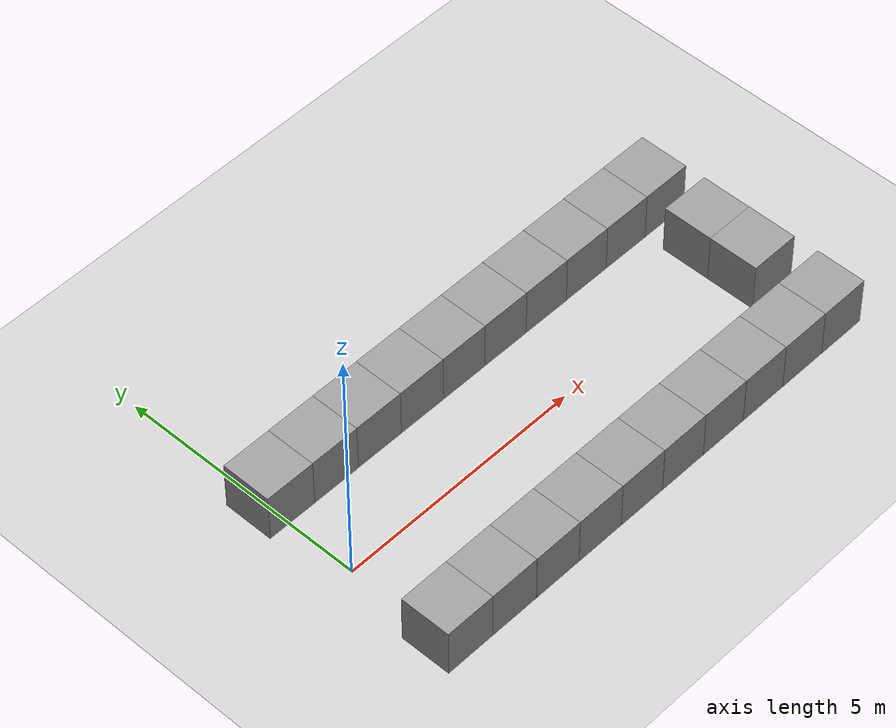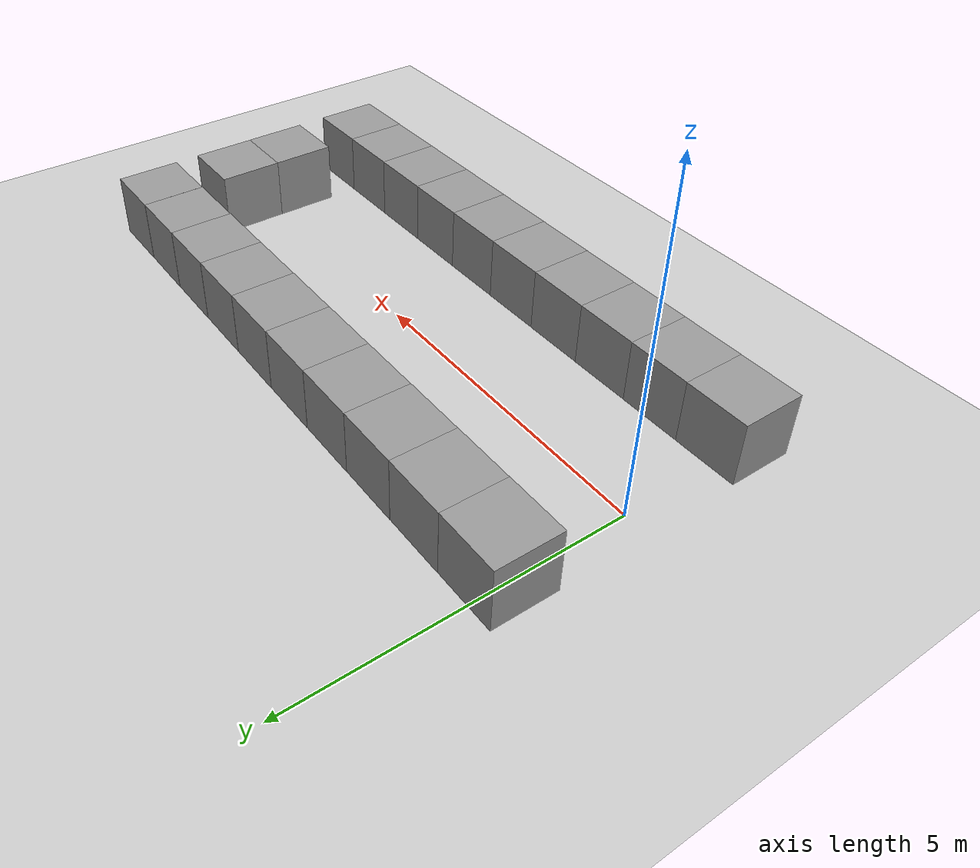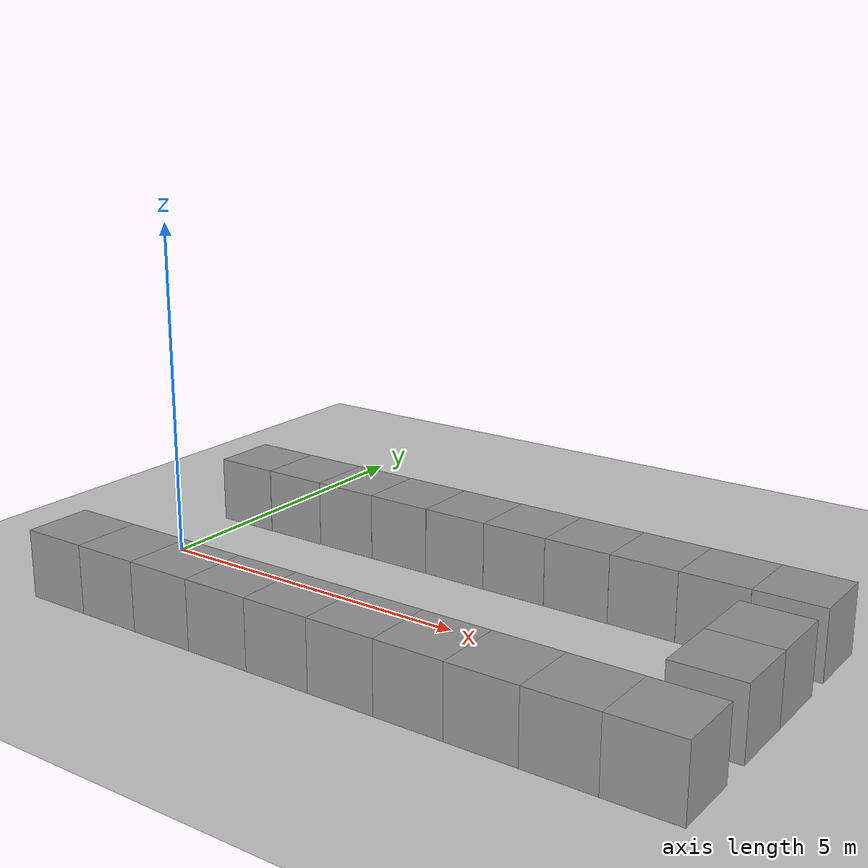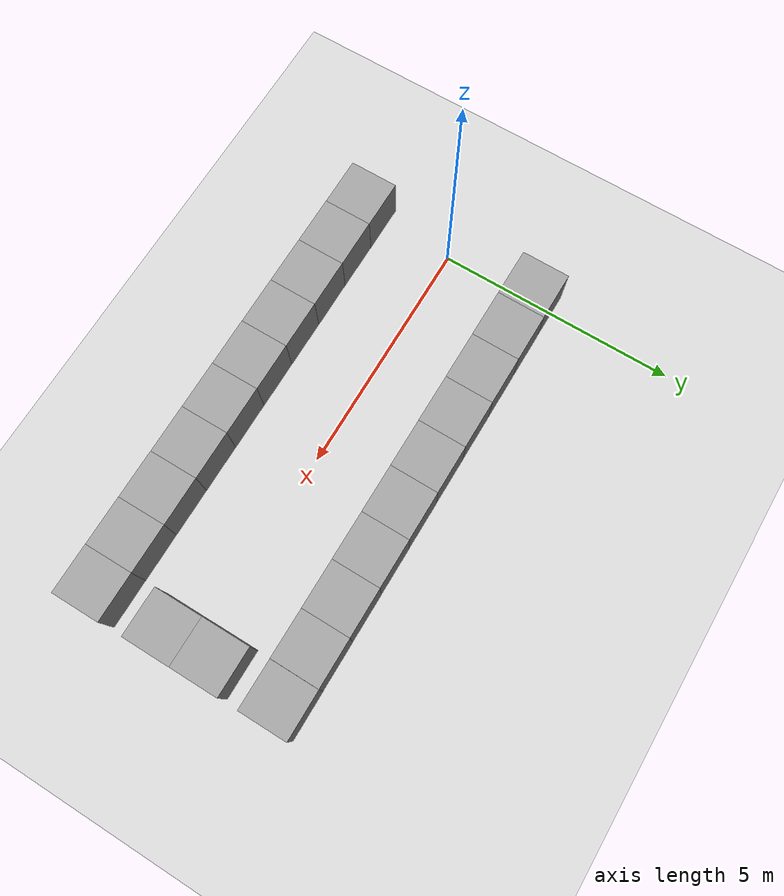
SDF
<sdf version="1.7">
 <world name="default">
  <scene><ambient>0.4 0.4 0.4 1</ambient><background>0.7 0.7 0.7 1</background><shadows>1</shadows></scene>
  <light name="sun" type="directional">
   <pose>0 0 10 0 -0 0</pose>
   <diffuse>0.8 0.8 0.8 1</diffuse>
   <specular>0.2 0.2 0.2 1</specular>
   <attenuation>
    <range>1000</range>
    <constant>0.9</constant>
    <linear>0.01</linear>
    <quadratic>0.001</quadratic>
   </attenuation>
   <direction>-0.5 0.1 -0.9</direction>
   <spot><inner_angle>0</inner_angle><outer_angle>0</outer_angle><falloff>0</falloff></spot>
  </light>
  <model name="ground_plane">
   <static>1</static>
   <link name="link">
    <collision name="collision">
     <geometry><plane><normal>0 0 1</normal><size>100 100</size></plane></geometry>
     <surface>
      <contact><collide_bitmask>65535</collide_bitmask></contact>
      <friction><ode><mu>100</mu><mu2>50</mu2></ode></friction>
     </surface>
    </collision>
    <visual name="visual">
     <cast_shadows>0</cast_shadows>
     <geometry><plane><normal>0 0 1</normal><size>100 100</size></plane></geometry>
     <material>
      <script><uri>file://media/materials/scripts/gazebo.material</uri><name>Gazebo/Grey</name></script>
     </material>
    </visual>
   </link>
  </model>
  <physics type="ode">
   <real_time_update_rate>1000</real_time_update_rate>
   <max_step_size>0.001</max_step_size>
   <real_time_factor>1</real_time_factor>
   <ode>
    <solver>
     <type>quick</type>
     <iters>150</iters>
     <precon_iters>0</precon_iters>
     <sor>1.4</sor>
     <use_dynamic_moi_rescaling>1</use_dynamic_moi_rescaling>
    </solver>
    <constraints>
     <cfm>1e-05</cfm>
     <erp>0.2</erp>
     <contact_max_correcting_vel>2000</contact_max_correcting_vel>
     <contact_surface_layer>0.01</contact_surface_layer>
    </constraints>
   </ode>
  </physics>
  <gravity>0 0 -9.8</gravity>
  <magnetic_field>6e-06 2.3e-05 -4.2e-05</magnetic_field>
  <atmosphere type="adiabatic"/>
  <spherical_coordinates>
   <surface_model>EARTH_WGS84</surface_model>
   <latitude_deg>0</latitude_deg>
   <longitude_deg>0</longitude_deg>
   <elevation>0</elevation>
   <heading_deg>0</heading_deg>
  </spherical_coordinates>
  <model name="unit_box">
   <pose>0.106798 -1.98343 0.5 0 -0 0.001817</pose>
   <link name="link">
    <inertial>
     <mass>1</mass>
     <inertia>
      <ixx>0.166667</ixx>
      <ixy>0</ixy>
      <ixz>0</ixz>
      <iyy>0.166667</iyy>
      <iyz>0</iyz>
      <izz>0.166667</izz>
     </inertia>
    </inertial>
    <collision name="collision"><geometry><box><size>1 1 1</size></box></geometry></collision>
    <visual name="visual">
     <geometry><box><size>1 1 1</size></box></geometry>
     <material>
      <script><name>Gazebo/Grey</name><uri>file://media/materials/scripts/gazebo.material</uri></script>
     </material>
    </visual>
   </link>
  </model>
  <model name="unit_box_0">
   <pose>1.1068 -1.98344 0.5 0 -0 0.001818</pose>
   <link name="link">
    <inertial>
     <mass>1</mass>
     <inertia>
      <ixx>0.166667</ixx>
      <ixy>0</ixy>
      <ixz>0</ixz>
      <iyy>0.166667</iyy>
      <iyz>0</iyz>
      <izz>0.166667</izz>
     </inertia>
    </inertial>
    <collision name="collision"><geometry><box><size>1 1 1</size></box></geometry></collision>
    <visual name="visual">
     <geometry><box><size>1 1 1</size></box></geometry>
     <material>
      <script><name>Gazebo/Grey</name><uri>file://media/materials/scripts/gazebo.material</uri></script>
     </material>
    </visual>
   </link>
  </model>
  <model name="unit_box_1">
   <pose>2.10681 -1.98346 0.5 0 -0 0.001819</pose>
   <link name="link">
    <inertial>
     <mass>1</mass>
     <inertia>
      <ixx>0.166667</ixx>
      <ixy>0</ixy>
      <ixz>0</ixz>
      <iyy>0.166667</iyy>
      <iyz>0</iyz>
      <izz>0.166667</izz>
     </inertia>
    </inertial>
    <collision name="collision"><geometry><box><size>1 1 1</size></box></geometry></collision>
    <visual name="visual">
     <geometry><box><size>1 1 1</size></box></geometry>
     <material>
      <script><name>Gazebo/Grey</name><uri>file://media/materials/scripts/gazebo.material</uri></script>
     </material>
    </visual>
   </link>
  </model>
  <model name="unit_box_2">
   <pose>3.10682 -1.98348 0.5 0 -0 0.001812</pose>
   <link name="link">
    <inertial>
     <mass>1</mass>
     <inertia>
      <ixx>0.166667</ixx>
      <ixy>0</ixy>
      <ixz>0</ixz>
      <iyy>0.166667</iyy>
      <iyz>0</iyz>
      <izz>0.166667</izz>
     </inertia>
    </inertial>
    <collision name="collision"><geometry><box><size>1 1 1</size></box></geometry></collision>
    <visual name="visual">
     <geometry><box><size>1 1 1</size></box></geometry>
     <material>
      <script><name>Gazebo/Grey</name><uri>file://media/materials/scripts/gazebo.material</uri></script>
     </material>
    </visual>
   </link>
  </model>
  <model name="unit_box_3">
   <pose>4.10682 -1.98346 0.5 0 -0 0.001811</pose>
   <link name="link">
    <inertial>
     <mass>1</mass>
     <inertia>
      <ixx>0.166667</ixx>
      <ixy>0</ixy>
      <ixz>0</ixz>
      <iyy>0.166667</iyy>
      <iyz>0</iyz>
      <izz>0.166667</izz>
     </inertia>
    </inertial>
    <collision name="collision"><geometry><box><size>1 1 1</size></box></geometry></collision>
    <visual name="visual">
     <geometry><box><size>1 1 1</size></box></geometry>
     <material>
      <script><name>Gazebo/Grey</name><uri>file://media/materials/scripts/gazebo.material</uri></script>
     </material>
    </visual>
   </link>
  </model>
  <model name="unit_box_4">
   <pose>0.078969 1.90934 0.5 0 -0 -0.002666</pose>
   <link name="link">
    <inertial>
     <mass>1</mass>
     <inertia>
      <ixx>0.166667</ixx>
      <ixy>0</ixy>
      <ixz>0</ixz>
      <iyy>0.166667</iyy>
      <iyz>0</iyz>
      <izz>0.166667</izz>
     </inertia>
    </inertial>
    <collision name="collision"><geometry><box><size>1 1 1</size></box></geometry></collision>
    <visual name="visual">
     <geometry><box><size>1 1 1</size></box></geometry>
     <material>
      <script><name>Gazebo/Grey</name><uri>file://media/materials/scripts/gazebo.material</uri></script>
     </material>
    </visual>
   </link>
  </model>
  <model name="unit_box_5">
   <pose>5.10683 -1.98343 0.5 0 -0 0.00181</pose>
   <link name="link">
    <inertial>
     <mass>1</mass>
     <inertia>
      <ixx>0.166667</ixx>
      <ixy>0</ixy>
      <ixz>0</ixz>
      <iyy>0.166667</iyy>
      <iyz>0</iyz>
      <izz>0.166667</izz>
     </inertia>
    </inertial>
    <collision name="collision"><geometry><box><size>1 1 1</size></box></geometry></collision>
    <visual name="visual">
     <geometry><box><size>1 1 1</size></box></geometry>
     <material>
      <script><name>Gazebo/Grey</name><uri>file://media/materials/scripts/gazebo.material</uri></script>
     </material>
    </visual>
   </link>
  </model>
  <model name="unit_box_6">
   <pose>6.10683 -1.98347 0.5 0 -0 0.001804</pose>
   <link name="link">
    <inertial>
     <mass>1</mass>
     <inertia>
      <ixx>0.166667</ixx>
      <ixy>0</ixy>
      <ixz>0</ixz>
      <iyy>0.166667</iyy>
      <iyz>0</iyz>
      <izz>0.166667</izz>
     </inertia>
    </inertial>
    <collision name="collision"><geometry><box><size>1 1 1</size></box></geometry></collision>
    <visual name="visual">
     <geometry><box><size>1 1 1</size></box></geometry>
     <material>
      <script><name>Gazebo/Grey</name><uri>file://media/materials/scripts/gazebo.material</uri></script>
     </material>
    </visual>
   </link>
  </model>
  <model name="unit_box_7">
   <pose>7.10684 -1.98345 0.5 0 -0 0.001804</pose>
   <link name="link">
    <inertial>
     <mass>1</mass>
     <inertia>
      <ixx>0.166667</ixx>
      <ixy>0</ixy>
      <ixz>0</ixz>
      <iyy>0.166667</iyy>
      <iyz>0</iyz>
      <izz>0.166667</izz>
     </inertia>
    </inertial>
    <collision name="collision"><geometry><box><size>1 1 1</size></box></geometry></collision>
    <visual name="visual">
     <geometry><box><size>1 1 1</size></box></geometry>
     <material>
      <script><name>Gazebo/Grey</name><uri>file://media/materials/scripts/gazebo.material</uri></script>
     </material>
    </visual>
   </link>
  </model>
  <model name="unit_box_8">
   <pose>8.10684 -1.98346 0.5 0 -0 0.001804</pose>
   <link name="link">
    <inertial>
     <mass>1</mass>
     <inertia>
      <ixx>0.166667</ixx>
      <ixy>0</ixy>
      <ixz>0</ixz>
      <iyy>0.166667</iyy>
      <iyz>0</iyz>
      <izz>0.166667</izz>
     </inertia>
    </inertial>
    <collision name="collision"><geometry><box><size>1 1 1</size></box></geometry></collision>
    <visual name="visual">
     <geometry><box><size>1 1 1</size></box></geometry>
     <material>
      <script><name>Gazebo/Grey</name><uri>file://media/materials/scripts/gazebo.material</uri></script>
     </material>
    </visual>
   </link>
  </model>
  <model name="unit_box_9">
   <pose>9.10684 -1.98343 0.5 0 -0 0.001806</pose>
   <link name="link">
    <inertial>
     <mass>1</mass>
     <inertia>
      <ixx>0.166667</ixx>
      <ixy>0</ixy>
      <ixz>0</ixz>
      <iyy>0.166667</iyy>
      <iyz>0</iyz>
      <izz>0.166667</izz>
     </inertia>
    </inertial>
    <collision name="collision"><geometry><box><size>1 1 1</size></box></geometry></collision>
    <visual name="visual">
     <geometry><box><size>1 1 1</size></box></geometry>
     <material>
      <script><name>Gazebo/Grey</name><uri>file://media/materials/scripts/gazebo.material</uri></script>
     </material>
    </visual>
   </link>
  </model>
  <model name="unit_box_10">
   <pose>1.07897 1.90933 0.5 -0 -0 -0.002665</pose>
   <link name="link">
    <inertial>
     <mass>1</mass>
     <inertia>
      <ixx>0.166667</ixx>
      <ixy>0</ixy>
      <ixz>0</ixz>
      <iyy>0.166667</iyy>
      <iyz>0</iyz>
      <izz>0.166667</izz>
     </inertia>
    </inertial>
    <collision name="collision"><geometry><box><size>1 1 1</size></box></geometry></collision>
    <visual name="visual">
     <geometry><box><size>1 1 1</size></box></geometry>
     <material>
      <script><name>Gazebo/Grey</name><uri>file://media/materials/scripts/gazebo.material</uri></script>
     </material>
    </visual>
   </link>
  </model>
  <model name="unit_box_11">
   <pose>2.07898 1.90934 0.5 0 -0 -0.002668</pose>
   <link name="link">
    <inertial>
     <mass>1</mass>
     <inertia>
      <ixx>0.166667</ixx>
      <ixy>0</ixy>
      <ixz>0</ixz>
      <iyy>0.166667</iyy>
      <iyz>0</iyz>
      <izz>0.166667</izz>
     </inertia>
    </inertial>
    <collision name="collision"><geometry><box><size>1 1 1</size></box></geometry></collision>
    <visual name="visual">
     <geometry><box><size>1 1 1</size></box></geometry>
     <material>
      <script><name>Gazebo/Grey</name><uri>file://media/materials/scripts/gazebo.material</uri></script>
     </material>
    </visual>
   </link>
  </model>
  <model name="unit_box_12">
   <pose>3.07899 1.90936 0.5 0 0 -0.002665</pose>
   <link name="link">
    <inertial>
     <mass>1</mass>
     <inertia>
      <ixx>0.166667</ixx>
      <ixy>0</ixy>
      <ixz>0</ixz>
      <iyy>0.166667</iyy>
      <iyz>0</iyz>
      <izz>0.166667</izz>
     </inertia>
    </inertial>
    <collision name="collision"><geometry><box><size>1 1 1</size></box></geometry></collision>
    <visual name="visual">
     <geometry><box><size>1 1 1</size></box></geometry>
     <material>
      <script><name>Gazebo/Grey</name><uri>file://media/materials/scripts/gazebo.material</uri></script>
     </material>
    </visual>
   </link>
  </model>
  <model name="unit_box_13">
   <pose>4.079 1.90934 0.5 0 0 -0.002649</pose>
   <link name="link">
    <inertial>
     <mass>1</mass>
     <inertia>
      <ixx>0.166667</ixx>
      <ixy>0</ixy>
      <ixz>0</ixz>
      <iyy>0.166667</iyy>
      <iyz>0</iyz>
      <izz>0.166667</izz>
     </inertia>
    </inertial>
    <collision name="collision"><geometry><box><size>1 1 1</size></box></geometry></collision>
    <visual name="visual">
     <geometry><box><size>1 1 1</size></box></geometry>
     <material>
      <script><name>Gazebo/Grey</name><uri>file://media/materials/scripts/gazebo.material</uri></script>
     </material>
    </visual>
   </link>
  </model>
  <model name="unit_box_14">
   <pose>5.07901 1.90934 0.5 0 0 -0.002648</pose>
   <link name="link">
    <inertial>
     <mass>1</mass>
     <inertia>
      <ixx>0.166667</ixx>
      <ixy>0</ixy>
      <ixz>0</ixz>
      <iyy>0.166667</iyy>
      <iyz>0</iyz>
      <izz>0.166667</izz>
     </inertia>
    </inertial>
    <collision name="collision"><geometry><box><size>1 1 1</size></box></geometry></collision>
    <visual name="visual">
     <geometry><box><size>1 1 1</size></box></geometry>
     <material>
      <script><name>Gazebo/Grey</name><uri>file://media/materials/scripts/gazebo.material</uri></script>
     </material>
    </visual>
   </link>
  </model>
  <model name="unit_box_15">
   <pose>6.07901 1.90932 0.5 0 -0 -0.002645</pose>
   <link name="link">
    <inertial>
     <mass>1</mass>
     <inertia>
      <ixx>0.166667</ixx>
      <ixy>0</ixy>
      <ixz>0</ixz>
      <iyy>0.166667</iyy>
      <iyz>0</iyz>
      <izz>0.166667</izz>
     </inertia>
    </inertial>
    <collision name="collision"><geometry><box><size>1 1 1</size></box></geometry></collision>
    <visual name="visual">
     <geometry><box><size>1 1 1</size></box></geometry>
     <material>
      <script><name>Gazebo/Grey</name><uri>file://media/materials/scripts/gazebo.material</uri></script>
     </material>
    </visual>
   </link>
  </model>
  <model name="unit_box_16">
   <pose>7.07902 1.90933 0.5 -0 -0 -0.002651</pose>
   <link name="link">
    <inertial>
     <mass>1</mass>
     <inertia>
      <ixx>0.166667</ixx>
      <ixy>0</ixy>
      <ixz>0</ixz>
      <iyy>0.166667</iyy>
      <iyz>0</iyz>
      <izz>0.166667</izz>
     </inertia>
    </inertial>
    <collision name="collision"><geometry><box><size>1 1 1</size></box></geometry></collision>
    <visual name="visual">
     <geometry><box><size>1 1 1</size></box></geometry>
     <material>
      <script><name>Gazebo/Grey</name><uri>file://media/materials/scripts/gazebo.material</uri></script>
     </material>
    </visual>
   </link>
  </model>
  <model name="unit_box_17">
   <pose>8.07904 1.90934 0.5 0 0 -0.002681</pose>
   <link name="link">
    <inertial>
     <mass>1</mass>
     <inertia>
      <ixx>0.166667</ixx>
      <ixy>0</ixy>
      <ixz>0</ixz>
      <iyy>0.166667</iyy>
      <iyz>0</iyz>
      <izz>0.166667</izz>
     </inertia>
    </inertial>
    <collision name="collision"><geometry><box><size>1 1 1</size></box></geometry></collision>
    <visual name="visual">
     <geometry><box><size>1 1 1</size></box></geometry>
     <material>
      <script><name>Gazebo/Grey</name><uri>file://media/materials/scripts/gazebo.material</uri></script>
     </material>
    </visual>
   </link>
  </model>
  <model name="unit_box_18">
   <pose>9.07951 1.90934 0.5 -0 -0 -0.002466</pose>
   <link name="link">
    <inertial>
     <mass>1</mass>
     <inertia>
      <ixx>0.166667</ixx>
      <ixy>0</ixy>
      <ixz>0</ixz>
      <iyy>0.166667</iyy>
      <iyz>0</iyz>
      <izz>0.166667</izz>
     </inertia>
    </inertial>
    <collision name="collision"><geometry><box><size>1 1 1</size></box></geometry></collision>
    <visual name="visual">
     <geometry><box><size>1 1 1</size></box></geometry>
     <material>
      <script><name>Gazebo/Grey</name><uri>file://media/materials/scripts/gazebo.material</uri></script>
     </material>
    </visual>
   </link>
  </model>
  <model name="unit_box_19">
   <pose>9.08884 0.50673 0.5 0 0 -7.7e-05</pose>
   <link name="link">
    <inertial>
     <mass>1</mass>
     <inertia>
      <ixx>0.166667</ixx>
      <ixy>0</ixy>
      <ixz>0</ixz>
      <iyy>0.166667</iyy>
      <iyz>0</iyz>
      <izz>0.166667</izz>
     </inertia>
    </inertial>
    <collision name="collision"><geometry><box><size>1 1 1</size></box></geometry></collision>
    <visual name="visual">
     <geometry><box><size>1 1 1</size></box></geometry>
     <material>
      <script><name>Gazebo/Grey</name><uri>file://media/materials/scripts/gazebo.material</uri></script>
     </material>
    </visual>
   </link>
  </model>
  <model name="unit_box_20">
   <pose>9.09098 -0.493271 0.5 0 0 -7.7e-05</pose>
   <link name="link">
    <inertial>
     <mass>1</mass>
     <inertia>
      <ixx>0.166667</ixx>
      <ixy>0</ixy>
      <ixz>0</ixz>
      <iyy>0.166667</iyy>
      <iyz>0</iyz>
      <izz>0.166667</izz>
     </inertia>
    </inertial>
    <collision name="collision"><geometry><box><size>1 1 1</size></box></geometry></collision>
    <visual name="visual">
     <geometry><box><size>1 1 1</size></box></geometry>
     <material>
      <script><name>Gazebo/Grey</name><uri>file://media/materials/scripts/gazebo.material</uri></script>
     </material>
    </visual>
   </link>
  </model>
 </world>
</sdf>
